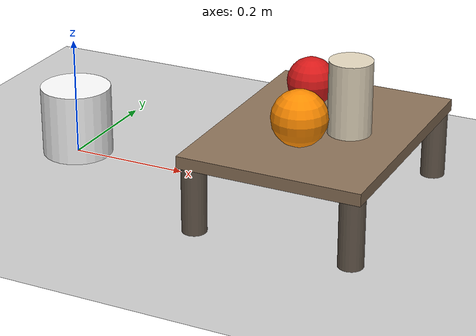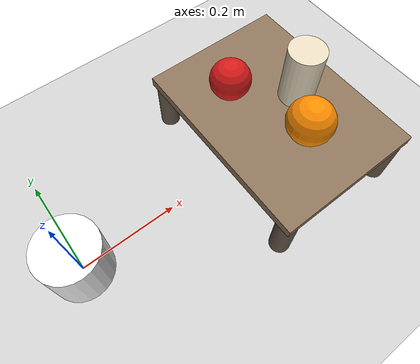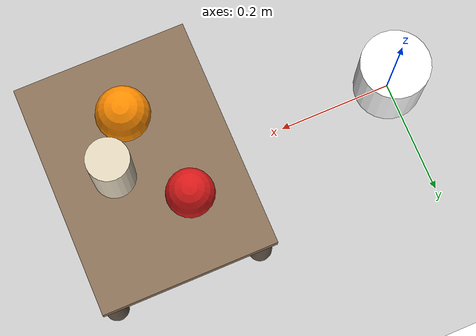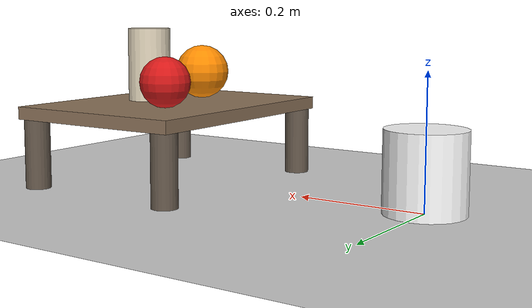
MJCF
<mujoco model="xarm evaluation table">
  <!-- Robot-free world from data/xarm7/scene.xml. Keep the eval geometry unchanged. -->
  <option integrator="implicitfast"/>
  <statistic center="0.3 0 0.4" extent="0.65"/>
  <visual>
    <headlight diffuse="0.7 0.7 0.7" ambient="0.4 0.4 0.4" specular="0 0 0"/>
    <rgba haze="0.15 0.25 0.35 1"/>
    <global azimuth="150" elevation="-20"/>
  </visual>
  <asset>
    <texture type="skybox" builtin="gradient" rgb1="0.3 0.5 0.7" rgb2="0 0 0" width="512" height="3072"/>
    <texture type="2d" name="groundplane" builtin="checker" mark="edge"
      rgb1="0.85 0.85 0.85" rgb2="0.75 0.75 0.75" markrgb="0.9 0.9 0.9" width="300" height="300"/>
    <material name="groundplane" texture="groundplane" texuniform="true" texrepeat="5 5" reflectance="0"/>
    <material name="table_top" rgba="0.55 0.45 0.35 1"/>
    <material name="table_leg" rgba="0.4 0.35 0.3 1"/>
    <material name="apple_red" rgba="0.85 0.1 0.1 1"/>
    <material name="orange" rgba="1 0.55 0 1"/>
    <material name="cup_beige" rgba="0.9 0.85 0.75 1"/>
  </asset>
  <worldbody>
    <light pos="0 0 1.5" dir="0 0 -1" directional="true"/>
    <geom name="floor" size="0 0 0.05" type="plane" material="groundplane"/>
    <geom type="cylinder" size="0.06 0.06" pos="0 0 0.06" rgba="1 1 1 1"/>
    <geom name="table_top" type="box" size="0.15 0.20 0.01" pos="0.45 0 0.12" material="table_top" mass="5"/>
    <geom name="table_leg1" type="cylinder" size="0.02 0.055" pos="0.32 -0.18 0.055" material="table_leg"/>
    <geom name="table_leg2" type="cylinder" size="0.02 0.055" pos="0.58 -0.18 0.055" material="table_leg"/>
    <geom name="table_leg3" type="cylinder" size="0.02 0.055" pos="0.32 0.18 0.055" material="table_leg"/>
    <geom name="table_leg4" type="cylinder" size="0.02 0.055" pos="0.58 0.18 0.055" material="table_leg"/>
    <body name="apple" pos="0.40 0.08 0.17">
      <freejoint/>
      <geom type="sphere" size="0.04" material="apple_red" mass="0.15"/>
    </body>
    <body name="orange" pos="0.45 -0.08 0.175">
      <freejoint/>
      <geom type="sphere" size="0.045" material="orange" mass="0.18"/>
    </body>
    <body name="cup" pos="0.50 0 0.19">
      <freejoint/>
      <geom type="cylinder" size="0.035 0.06" material="cup_beige" mass="0.2"/>
    </body>
  </worldbody>
</mujoco>
